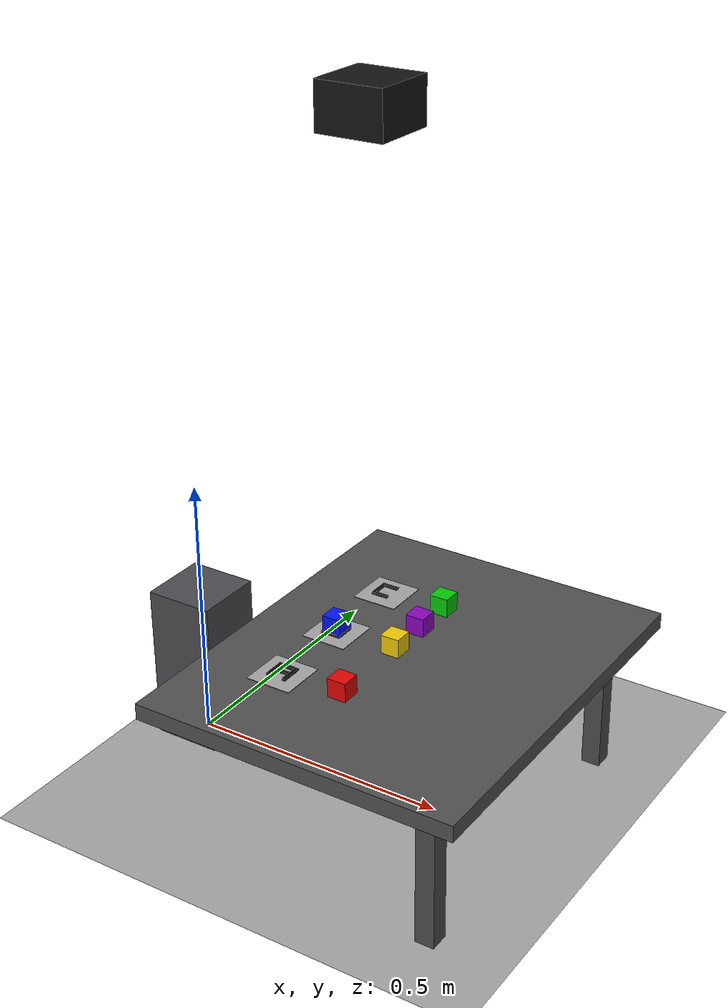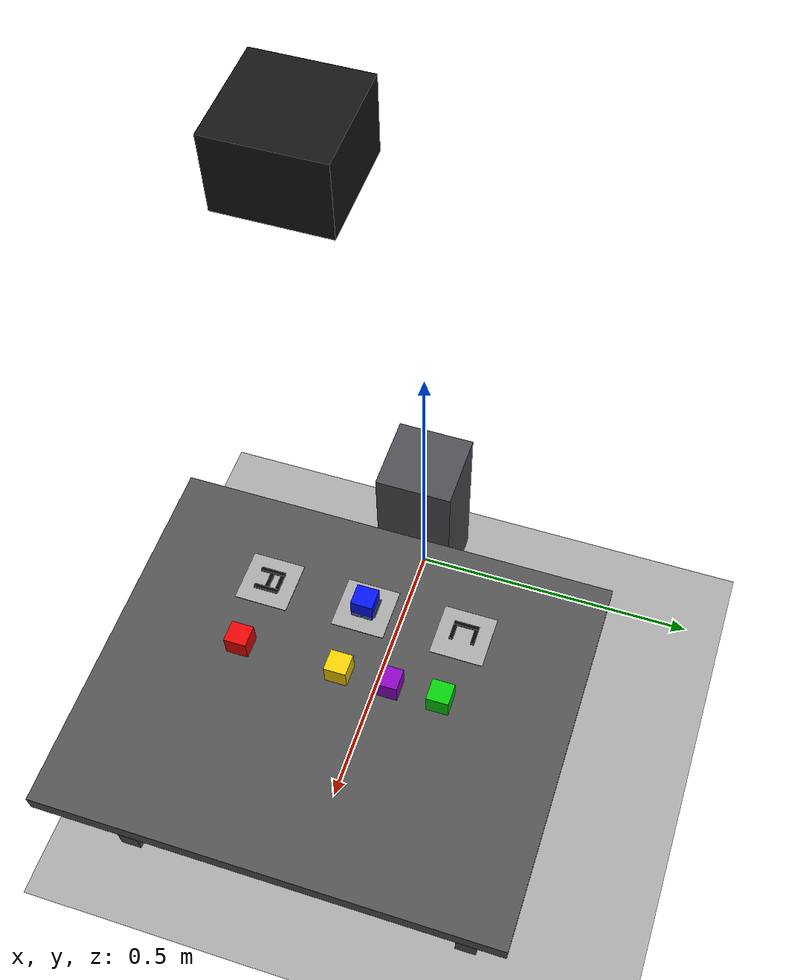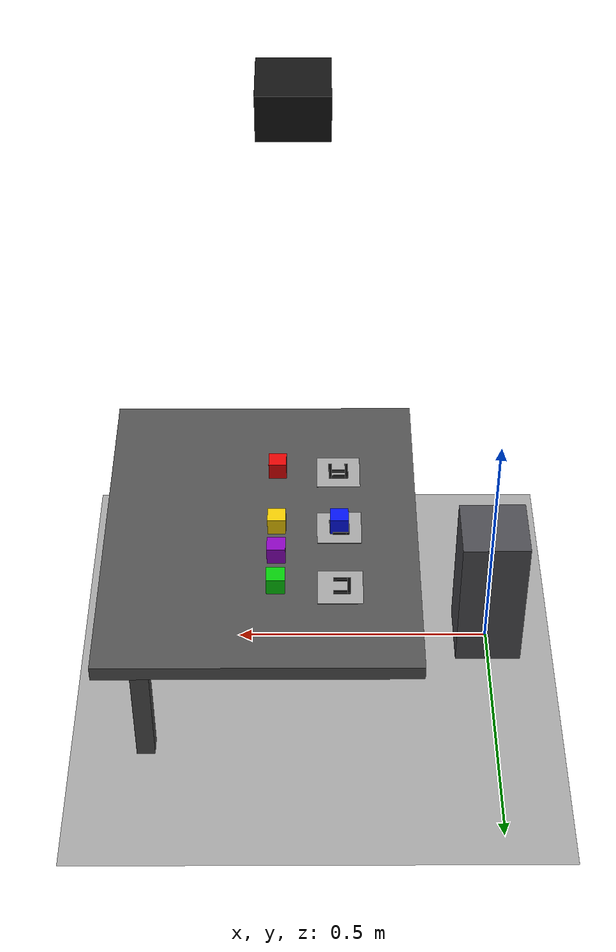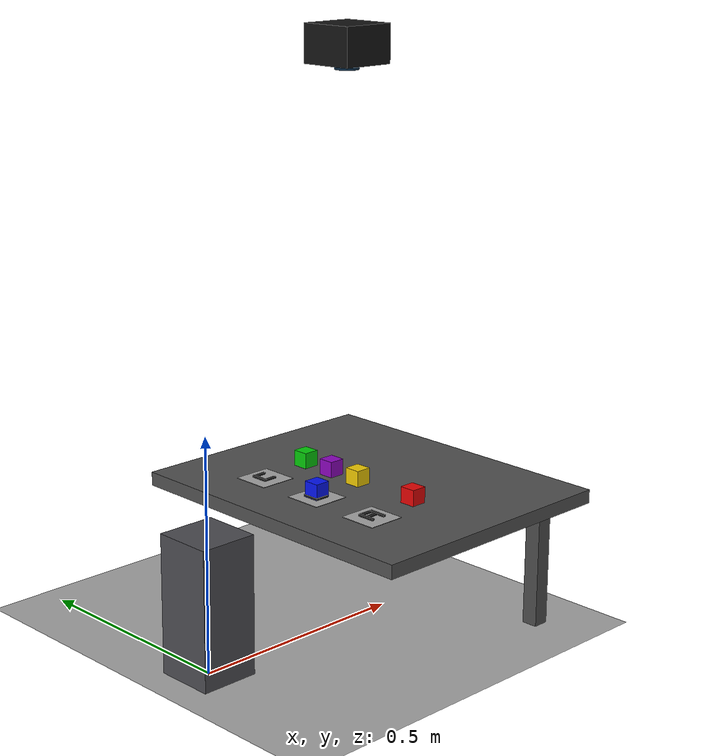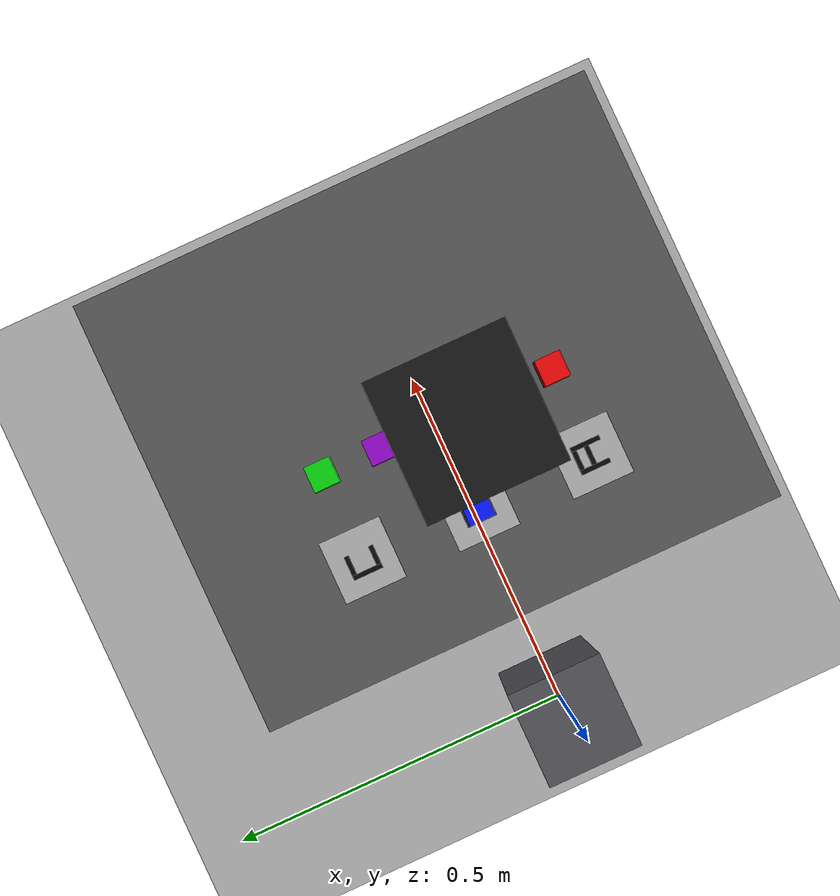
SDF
<?xml version="1.0"?>
<sdf version="1.7">
  <world name="ur3_b3">
    <physics name="default" type="ignored">
      <max_step_size>0.001</max_step_size>
      <real_time_factor>1</real_time_factor>
    </physics>
    <plugin filename="ignition-gazebo-physics-system" name="ignition::gazebo::systems::Physics"/>
    <plugin filename="ignition-gazebo-user-commands-system" name="ignition::gazebo::systems::UserCommands"/>
    <plugin filename="ignition-gazebo-scene-broadcaster-system" name="ignition::gazebo::systems::SceneBroadcaster"/>
    <plugin filename="ignition-gazebo-sensors-system" name="ignition::gazebo::systems::Sensors">
      <render_engine>ogre2</render_engine>
    </plugin>

    <light name="sun" type="directional">
      <pose>0 0 2 0 0 0</pose>
      <diffuse>1 1 1 1</diffuse>
      <specular>0.1 0.1 0.1 1</specular>
      <direction>-0.3 0.2 -1</direction>
    </light>

    <model name="ground">
      <static>true</static>
      <link name="ground">
        <collision name="collision"><geometry><plane><normal>0 0 1</normal><size>10 10</size></plane></geometry></collision>
        <visual name="visual"><geometry><plane><normal>0 0 1</normal><size>10 10</size></plane></geometry>
          <material><ambient>0.65 0.65 0.65 1</ambient><diffuse>0.65 0.65 0.65 1</diffuse></material></visual>
      </link>
    </model>

    <model name="robot_pedestal"><static>true</static><pose>0 0 0.15 0 0 0</pose>
      <link name="support">
        <collision name="collision"><geometry><box><size>0.13 0.13 0.30</size></box></geometry></collision>
        <visual name="visual"><geometry><box><size>0.13 0.13 0.30</size></box></geometry>
          <material><ambient>0.30 0.30 0.32 1</ambient><diffuse>0.30 0.30 0.32 1</diffuse></material></visual>
      </link>
    </model>

    <!-- Table top is z=0.30 m, within the UR3e working envelope. -->
    <model name="table">
      <static>true</static><pose>0.45 0 0.285 0 0 0</pose>
      <link name="top">
        <collision name="collision"><geometry><box><size>0.60 0.72 0.03</size></box></geometry>
          <surface><friction><ode><mu>1.2</mu><mu2>1.2</mu2></ode></friction></surface></collision>
        <visual name="visual"><geometry><box><size>0.60 0.72 0.03</size></box></geometry>
          <material><ambient>0.28 0.28 0.28 1</ambient><diffuse>0.32 0.32 0.32 1</diffuse></material></visual>
      </link>
      <link name="leg_left"><pose>0.22 -0.29 -0.15 0 0 0</pose>
        <collision name="collision"><geometry><box><size>0.035 0.035 0.27</size></box></geometry></collision>
        <visual name="visual"><geometry><box><size>0.035 0.035 0.27</size></box></geometry>
          <material><ambient>0.3 0.3 0.3 1</ambient><diffuse>0.3 0.3 0.3 1</diffuse></material></visual>
      </link>
      <joint name="leg_left_fixed" type="fixed"><parent>top</parent><child>leg_left</child></joint>
      <link name="leg_right"><pose>0.22 0.29 -0.15 0 0 0</pose>
        <collision name="collision"><geometry><box><size>0.035 0.035 0.27</size></box></geometry></collision>
        <visual name="visual"><geometry><box><size>0.035 0.035 0.27</size></box></geometry>
          <material><ambient>0.3 0.3 0.3 1</ambient><diffuse>0.3 0.3 0.3 1</diffuse></material></visual>
      </link>
      <joint name="leg_right_fixed" type="fixed"><parent>top</parent><child>leg_right</child></joint>
    </model>

    <!-- Thin visual markers have no collision; cubes rest on the table itself. -->
    <model name="zone_a"><static>true</static><pose>0.30 -0.16 0.301 0 0 0</pose><link name="marker">
      <visual name="visual"><geometry><box><size>0.085 0.085 0.001</size></box></geometry>
        <material><ambient>0.65 0.65 0.65 1</ambient><diffuse>0.65 0.65 0.65 1</diffuse></material></visual>
      <!-- Letter A, built from thin boxes because Fortress does not render
           SDF text geometry consistently. -->
      <visual name="label_a_left"><pose>-0.016 0 0.004 0 0 0</pose><geometry><box><size>0.006 0.040 0.004</size></box></geometry><material><ambient>0.02 0.02 0.02 1</ambient><diffuse>0.02 0.02 0.02 1</diffuse></material></visual>
      <visual name="label_a_right"><pose>0.016 0 0.004 0 0 0</pose><geometry><box><size>0.006 0.040 0.004</size></box></geometry><material><ambient>0.02 0.02 0.02 1</ambient><diffuse>0.02 0.02 0.02 1</diffuse></material></visual>
      <visual name="label_a_top"><pose>0 0.017 0.004 0 0 0</pose><geometry><box><size>0.026 0.006 0.004</size></box></geometry><material><ambient>0.02 0.02 0.02 1</ambient><diffuse>0.02 0.02 0.02 1</diffuse></material></visual>
      <visual name="label_a_mid"><pose>0 0 0.004 0 0 0</pose><geometry><box><size>0.026 0.006 0.004</size></box></geometry><material><ambient>0.02 0.02 0.02 1</ambient><diffuse>0.02 0.02 0.02 1</diffuse></material></visual>
    </link></model>
    <model name="zone_b"><static>true</static><pose>0.30 0 0.301 0 0 0</pose><link name="marker">
      <visual name="visual"><geometry><box><size>0.085 0.085 0.001</size></box></geometry>
        <material><ambient>0.65 0.65 0.65 1</ambient><diffuse>0.65 0.65 0.65 1</diffuse></material></visual>
      <!-- Letter B from thin boxes. -->
      <visual name="label_b_left"><pose>-0.016 0 0.004 0 0 0</pose><geometry><box><size>0.006 0.040 0.004</size></box></geometry><material><ambient>0.02 0.02 0.02 1</ambient><diffuse>0.02 0.02 0.02 1</diffuse></material></visual>
      <visual name="label_b_top"><pose>0 0.017 0.004 0 0 0</pose><geometry><box><size>0.026 0.006 0.004</size></box></geometry><material><ambient>0.02 0.02 0.02 1</ambient><diffuse>0.02 0.02 0.02 1</diffuse></material></visual>
      <visual name="label_b_mid"><pose>0 0 0.004 0 0 0</pose><geometry><box><size>0.026 0.006 0.004</size></box></geometry><material><ambient>0.02 0.02 0.02 1</ambient><diffuse>0.02 0.02 0.02 1</diffuse></material></visual>
      <visual name="label_b_bottom"><pose>0 -0.017 0.004 0 0 0</pose><geometry><box><size>0.026 0.006 0.004</size></box></geometry><material><ambient>0.02 0.02 0.02 1</ambient><diffuse>0.02 0.02 0.02 1</diffuse></material></visual>
      <visual name="label_b_upper"><pose>0.016 0.009 0.004 0 0 0</pose><geometry><box><size>0.006 0.014 0.004</size></box></geometry><material><ambient>0.02 0.02 0.02 1</ambient><diffuse>0.02 0.02 0.02 1</diffuse></material></visual>
      <visual name="label_b_lower"><pose>0.016 -0.009 0.004 0 0 0</pose><geometry><box><size>0.006 0.014 0.004</size></box></geometry><material><ambient>0.02 0.02 0.02 1</ambient><diffuse>0.02 0.02 0.02 1</diffuse></material></visual>
    </link></model>
    <model name="zone_c"><static>true</static><pose>0.30 0.16 0.301 0 0 0</pose><link name="marker">
      <visual name="visual"><geometry><box><size>0.085 0.085 0.001</size></box></geometry>
        <material><ambient>0.65 0.65 0.65 1</ambient><diffuse>0.65 0.65 0.65 1</diffuse></material></visual>
      <!-- Letter C from thin boxes. -->
      <visual name="label_c_left"><pose>-0.016 0 0.004 0 0 0</pose><geometry><box><size>0.006 0.040 0.004</size></box></geometry><material><ambient>0.02 0.02 0.02 1</ambient><diffuse>0.02 0.02 0.02 1</diffuse></material></visual>
      <visual name="label_c_top"><pose>0 0.017 0.004 0 0 0</pose><geometry><box><size>0.026 0.006 0.004</size></box></geometry><material><ambient>0.02 0.02 0.02 1</ambient><diffuse>0.02 0.02 0.02 1</diffuse></material></visual>
      <visual name="label_c_mid"><pose>0 -0.017 0.004 0 0 0</pose><geometry><box><size>0.026 0.006 0.004</size></box></geometry><material><ambient>0.02 0.02 0.02 1</ambient><diffuse>0.02 0.02 0.02 1</diffuse></material></visual>
    </link></model>

    <model name="red_cube"><pose>0.42 -0.16 0.319 0 0 0</pose><link name="body">
      <inertial><mass>0.04</mass><inertia><ixx>8.17e-6</ixx><iyy>8.17e-6</iyy><izz>8.17e-6</izz></inertia></inertial>
      <collision name="collision"><geometry><box><size>0.035 0.035 0.035</size></box></geometry><surface><friction><ode><mu>1.5</mu><mu2>1.5</mu2></ode></friction></surface></collision>
      <visual name="visual"><geometry><box><size>0.035 0.035 0.035</size></box></geometry><material><ambient>0.8 0.02 0.02 1</ambient><diffuse>0.9 0.02 0.02 1</diffuse></material></visual>
    </link></model>
    <model name="yellow_cube"><pose>0.42 0 0.319 0 0 0</pose><link name="body">
      <inertial><mass>0.04</mass><inertia><ixx>8.17e-6</ixx><iyy>8.17e-6</iyy><izz>8.17e-6</izz></inertia></inertial>
      <collision name="collision"><geometry><box><size>0.035 0.035 0.035</size></box></geometry><surface><friction><ode><mu>1.5</mu><mu2>1.5</mu2></ode></friction></surface></collision>
      <visual name="visual"><geometry><box><size>0.035 0.035 0.035</size></box></geometry><material><ambient>0.95 0.8 0.01 1</ambient><diffuse>0.95 0.8 0.01 1</diffuse></material></visual>
    </link></model>
    <model name="blue_cube"><pose>0.30 0 0.319 0 0 0</pose><link name="body">
      <inertial><mass>0.04</mass><inertia><ixx>8.17e-6</ixx><iyy>8.17e-6</iyy><izz>8.17e-6</izz></inertia></inertial>
      <collision name="collision"><geometry><box><size>0.035 0.035 0.035</size></box></geometry><surface><friction><ode><mu>1.5</mu><mu2>1.5</mu2></ode></friction></surface></collision>
      <visual name="visual"><geometry><box><size>0.035 0.035 0.035</size></box></geometry><material><ambient>0.02 0.08 0.85 1</ambient><diffuse>0.02 0.08 0.95 1</diffuse></material></visual>
    </link></model>
    <model name="green_cube"><pose>0.42 0.16 0.319 0 0 0</pose><link name="body">
      <inertial><mass>0.04</mass><inertia><ixx>8.17e-6</ixx><iyy>8.17e-6</iyy><izz>8.17e-6</izz></inertia></inertial>
      <collision name="collision"><geometry><box><size>0.035 0.035 0.035</size></box></geometry><surface><friction><ode><mu>1.5</mu><mu2>1.5</mu2></ode></friction></surface></collision>
      <visual name="visual"><geometry><box><size>0.035 0.035 0.035</size></box></geometry><material><ambient>0.02 0.7 0.04 1</ambient><diffuse>0.02 0.8 0.04 1</diffuse></material></visual>
    </link></model>
    <model name="purple_cube"><pose>0.42 0.08 0.319 0 0 0</pose><link name="body">
      <inertial><mass>0.04</mass><inertia><ixx>8.17e-6</ixx><iyy>8.17e-6</iyy><izz>8.17e-6</izz></inertia></inertial>
      <collision name="collision"><geometry><box><size>0.035 0.035 0.035</size></box></geometry><surface><friction><ode><mu>1.5</mu><mu2>1.5</mu2></ode></friction></surface></collision>
      <visual name="visual"><geometry><box><size>0.035 0.035 0.035</size></box></geometry><material><ambient>0.45 0.02 0.65 1</ambient><diffuse>0.55 0.02 0.75 1</diffuse></material></visual>
    </link></model>

    <model name="overhead_camera"><static>true</static><pose>0.38 0 1.15 0 0 0</pose>
      <link name="camera_link">
        <!-- Keep the housing behind the optical sensor so it does not appear
             in its own image. -->
        <visual name="camera_body"><pose>0 0 0.08 0 0 0</pose><geometry><box><size>0.12 0.12 0.08</size></box></geometry>
          <material><ambient>0.03 0.03 0.03 1</ambient><diffuse>0.08 0.08 0.08 1</diffuse></material>
        </visual>
        <visual name="camera_lens"><pose>0 0 0.035 0 0 0</pose>
          <geometry><cylinder><radius>0.025</radius><length>0.012</length></cylinder></geometry>
          <material><ambient>0.02 0.05 0.08 1</ambient><diffuse>0.03 0.15 0.25 1</diffuse></material>
        </visual>
        <sensor name="rgb" type="camera"><pose>0 0 0 0 1.57079632679 0</pose>
          <always_on>true</always_on><update_rate>10</update_rate><topic>/camera</topic>
          <camera><horizontal_fov>1.15</horizontal_fov><image><width>800</width><height>800</height><format>R8G8B8</format></image>
            <clip><near>0.05</near><far>10</far></clip></camera>
        </sensor>
      </link>
    </model>
  </world>
</sdf>
